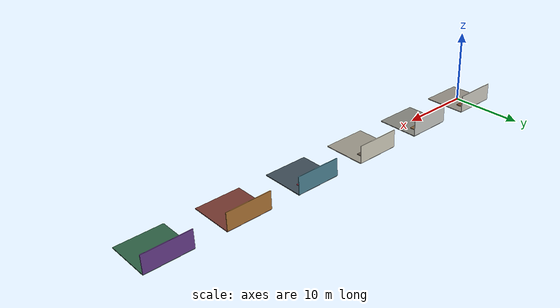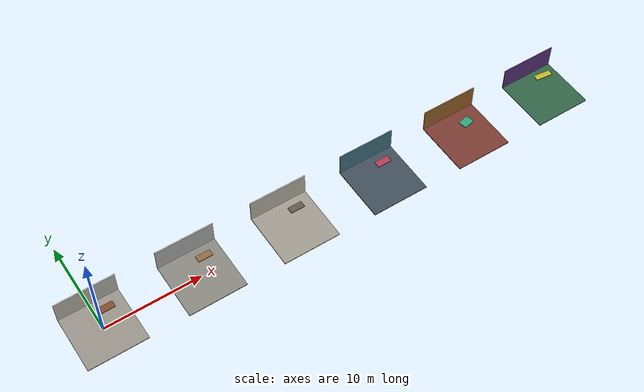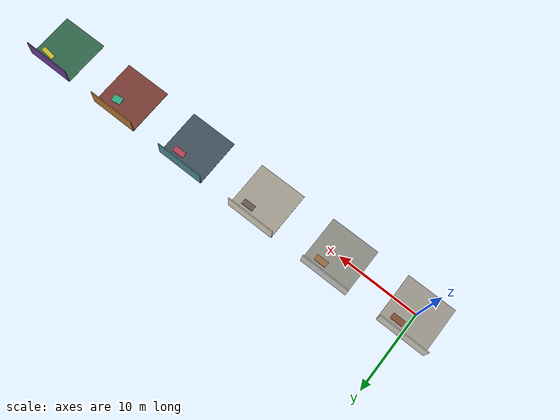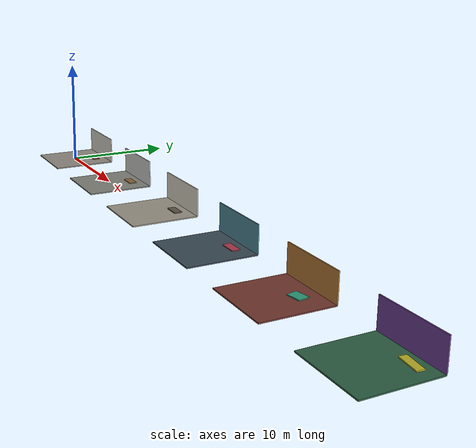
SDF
<?xml version="1.0"?>
<sdf version="1.8">
  <world name="gso_dataset">
    <physics type="ode">
      <real_time_update_rate>500</real_time_update_rate>
      <max_step_size>0.002</max_step_size>
      <real_time_factor>1</real_time_factor>
    </physics>
    <plugin filename="gz-sim-physics-system" name="gz::sim::systems::Physics"/>
    <plugin filename="gz-sim-user-commands-system" name="gz::sim::systems::UserCommands"/>
    <plugin filename="gz-sim-scene-broadcaster-system" name="gz::sim::systems::SceneBroadcaster"/>
    <plugin filename="gz-sim-sensors-system" name="gz::sim::systems::Sensors">
      <render_engine>ogre2</render_engine>
    </plugin>

    <scene>
      <ambient>0.45 0.45 0.45 1</ambient>
      <background>0.65 0.68 0.72 1</background>
      <shadows>true</shadows>
    </scene>
    <light type="directional" name="sun">
      <pose>0 0 10 0 0 0</pose>
      <diffuse>0.85 0.82 0.78 1</diffuse>
      <specular>0.2 0.2 0.2 1</specular>
      <direction>-0.4 0.2 -0.9</direction>
    </light>
    <light type="point" name="randomized_light_3">
      <pose>30 0 2.2 0 0 0</pose>
      <diffuse>0.95 0.72 0.58 1</diffuse>
      <specular>0.2 0.2 0.2 1</specular>
      <attenuation><range>7</range><constant>0.4</constant><linear>0.08</linear></attenuation>
    </light>
    <light type="point" name="randomized_light_4">
      <pose>40 -0.8 1.8 0 0 0</pose>
      <diffuse>0.58 0.72 0.98 1</diffuse>
      <specular>0.2 0.2 0.2 1</specular>
      <attenuation><range>6</range><constant>0.5</constant><linear>0.1</linear></attenuation>
    </light>
    <light type="point" name="randomized_light_5">
      <pose>50 1.0 2.0 0 0 0</pose>
      <diffuse>0.72 0.95 0.68 1</diffuse>
      <specular>0.2 0.2 0.2 1</specular>
      <attenuation><range>8</range><constant>0.35</constant><linear>0.06</linear></attenuation>
    </light>

    <!-- Discrete bays make material, layout, and lighting variation deterministic offline. -->
    <model name="dataset_bays">
      <static>true</static>
      <link name="geometry">
        <collision name="floor_collision_0"><geometry><box><size>6 6 0.1</size></box></geometry><pose>0 0 -0.05 0 0 0</pose></collision>
        <visual name="floor_visual_0"><geometry><box><size>6 6 0.1</size></box></geometry><pose>0 0 -0.05 0 0 0</pose><material><diffuse>0.58 0.56 0.52 1</diffuse></material></visual>
        <collision name="floor_collision_1"><geometry><box><size>6 6 0.1</size></box></geometry><pose>10 0 -0.05 0 0 0</pose></collision>
        <visual name="floor_visual_1"><geometry><box><size>6 6 0.1</size></box></geometry><pose>10 0 -0.05 0 0 0</pose><material><diffuse>0.52 0.52 0.49 1</diffuse></material></visual>
        <collision name="floor_collision_2"><geometry><box><size>6 6 0.1</size></box></geometry><pose>20 0 -0.05 0 0 0</pose></collision>
        <visual name="floor_visual_2"><geometry><box><size>6 6 0.1</size></box></geometry><pose>20 0 -0.05 0 0 0</pose><material><diffuse>0.61 0.59 0.54 1</diffuse></material></visual>
        <collision name="floor_collision_3"><geometry><box><size>6 6 0.1</size></box></geometry><pose>30 0 -0.05 0 0 0</pose></collision>
        <visual name="floor_visual_3"><geometry><box><size>6 6 0.1</size></box></geometry><pose>30 0 -0.05 0 0 0</pose><material><diffuse>0.24 0.30 0.34 1</diffuse></material></visual>
        <collision name="floor_collision_4"><geometry><box><size>6 6 0.1</size></box></geometry><pose>40 0 -0.05 0 0 0</pose></collision>
        <visual name="floor_visual_4"><geometry><box><size>6 6 0.1</size></box></geometry><pose>40 0 -0.05 0 0 0</pose><material><diffuse>0.46 0.22 0.19 1</diffuse></material></visual>
        <collision name="floor_collision_5"><geometry><box><size>6 6 0.1</size></box></geometry><pose>50 0 -0.05 0 0 0</pose></collision>
        <visual name="floor_visual_5"><geometry><box><size>6 6 0.1</size></box></geometry><pose>50 0 -0.05 0 0 0</pose><material><diffuse>0.18 0.38 0.27 1</diffuse></material></visual>

        <visual name="back_wall_0">
          <geometry><box><size>6 0.1 2.4</size></box></geometry>
          <pose>0 3 1.2 0 0 0</pose>
          <material><diffuse>0.86 0.85 0.81 1</diffuse></material>
        </visual>
        <visual name="back_wall_1">
          <geometry><box><size>6 0.1 2.4</size></box></geometry>
          <pose>10 3 1.2 0 0 0</pose>
          <material><diffuse>0.83 0.84 0.82 1</diffuse></material>
        </visual>
        <visual name="back_wall_2">
          <geometry><box><size>6 0.1 2.4</size></box></geometry>
          <pose>20 3 1.2 0 0 0</pose>
          <material><diffuse>0.88 0.86 0.79 1</diffuse></material>
        </visual>
        <visual name="back_wall_randomized">
          <geometry><box><size>6 0.1 2.4</size></box></geometry>
          <pose>30 3 1.2 0 0 0</pose>
          <material><diffuse>0.32 0.55 0.62 1</diffuse></material>
        </visual>
        <visual name="back_wall_randomized_4">
          <geometry><box><size>6 0.1 2.4</size></box></geometry>
          <pose>40 3 1.2 0 0 0</pose>
          <material><diffuse>0.72 0.48 0.22 1</diffuse></material>
        </visual>
        <visual name="back_wall_randomized_5">
          <geometry><box><size>6 0.1 2.4</size></box></geometry>
          <pose>50 3 1.2 0 0 0</pose>
          <material><diffuse>0.43 0.25 0.58 1</diffuse></material>
        </visual>

        <collision name="table_collision_0">
          <geometry><box><size>1.5 0.7 0.08</size></box></geometry>
          <pose>1.2 1.7 0.18 0 0 0</pose>
        </collision>
        <visual name="table_visual_0">
          <geometry><box><size>1.5 0.7 0.08</size></box></geometry>
          <pose>1.2 1.7 0.18 0 0 0</pose>
          <material><diffuse>0.47 0.29 0.18 1</diffuse></material>
        </visual>
        <collision name="table_collision_1">
          <geometry><box><size>1.5 0.7 0.08</size></box></geometry>
          <pose>11.2 1.7 0.18 0 0 0</pose>
        </collision>
        <visual name="table_visual_1">
          <geometry><box><size>1.5 0.7 0.08</size></box></geometry>
          <pose>11.2 1.7 0.18 0 0 0</pose>
          <material><diffuse>0.55 0.40 0.24 1</diffuse></material>
        </visual>
        <collision name="table_collision_2">
          <geometry><box><size>1.5 0.7 0.08</size></box></geometry>
          <pose>21.2 1.7 0.18 0 0 0</pose>
        </collision>
        <visual name="table_visual_2">
          <geometry><box><size>1.5 0.7 0.08</size></box></geometry>
          <pose>21.2 1.7 0.18 0 0 0</pose>
          <material><diffuse>0.38 0.33 0.28 1</diffuse></material>
        </visual>
        <collision name="table_collision_3">
          <geometry><box><size>1.5 0.7 0.08</size></box></geometry>
          <pose>31.2 1.7 0.18 0 0 0</pose>
        </collision>
        <visual name="table_visual_3">
          <geometry><box><size>1.5 0.7 0.08</size></box></geometry>
          <pose>31.2 1.7 0.18 0 0 0</pose>
          <material><diffuse>0.68 0.23 0.31 1</diffuse></material>
        </visual>
        <collision name="table_collision_4">
          <geometry><box><size>1.2 0.9 0.08</size></box></geometry>
          <pose>41.0 1.25 0.18 0 0 0.18</pose>
        </collision>
        <visual name="table_visual_4">
          <geometry><box><size>1.2 0.9 0.08</size></box></geometry>
          <pose>41.0 1.25 0.18 0 0 0.18</pose>
          <material><diffuse>0.18 0.62 0.48 1</diffuse></material>
        </visual>
        <collision name="table_collision_5">
          <geometry><box><size>1.8 0.6 0.08</size></box></geometry>
          <pose>51.4 1.9 0.18 0 0 -0.12</pose>
        </collision>
        <visual name="table_visual_5">
          <geometry><box><size>1.8 0.6 0.08</size></box></geometry>
          <pose>51.4 1.9 0.18 0 0 -0.12</pose>
          <material><diffuse>0.74 0.70 0.16 1</diffuse></material>
        </visual>
      </link>
    </model>
  </world>
</sdf>
